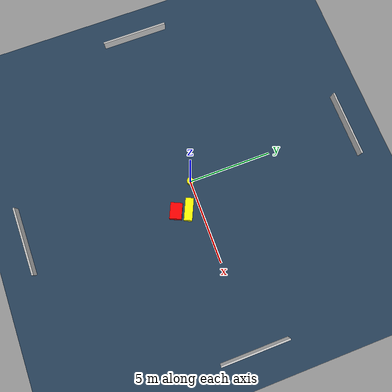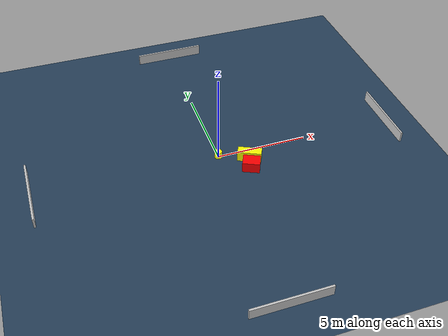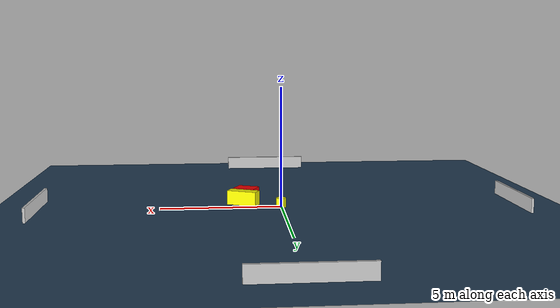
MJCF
<?xml version="1.0" ?>
<mujoco model="generated_environment">
  <option timestep="0.01" integrator="RK4" cone="elliptic"/>
  <default>
    <geom density="1"/>
  </default>
  <asset>
    <texture builtin="gradient" height="3072" name="skybox" rgb1="0.3 0.5 0.7" rgb2="0 0 0" type="skybox" width="512"/>
    <texture builtin="checker" height="300" name="groundplane" rgb1="0.2 0.3 0.4" rgb2="0.1 0.2 0.3" type="2d" width="300"/>
    <material name="groundplane" reflectance="0.2" texrepeat="5 5" texture="groundplane"/>
  </asset>
  <worldbody>
    <light dir="0 0 -1" directional="true" pos="0 0 1.5"/>
    <geom condim="3" friction="0.5 0.005 0.001" material="groundplane" name="floor" pos="0 0 0" size="0 0 0.05" type="plane"/>
    <body name="walls">
      <geom name="wall_1" condim="4" pos="-10.0 0.0 0.3" rgba="0.800000011920929 0.800000011920929 0.800000011920929 1.0" size="0.05 2.0 0.3" type="box"/>
      <geom name="wall_2" condim="4" pos="10.0 0.0 0.3" rgba="0.800000011920929 0.800000011920929 0.800000011920929 1.0" size="0.05 2.0 0.3" type="box"/>
      <geom name="wall_3" condim="4" pos="0.0 -10.0 0.3" rgba="0.800000011920929 0.800000011920929 0.800000011920929 1.0" size="2.0 0.05 0.3" type="box"/>
      <geom name="wall_4" condim="4" pos="0.0 10.0 0.3" rgba="0.800000011920929 0.800000011920929 0.800000011920929 1.0" size="2.0 0.05 0.3" type="box"/>
    </body>
    <body name="robot">
      <joint name="joint_x" type="slide" pos="0 0 0" axis="1 0 0"/>
      <joint name="joint_y" type="slide" pos="0 0 0" axis="0 1 0"/>
      <geom name="robot" type="cylinder" pos="0.0 0.0 0.2" size="0.2 0.2 0.0" mass="5.0" friction="1.0 0.005 0.0001" condim="4" rgba="1.0 1.0 0.0 1.0"/>
    </body>
    <body name="obstacle_1_movable">
      <geom name="obstacle_1_movable" condim="4" pos="1.5504667533449747 -0.663348817279682 0.3" euler="0 0 245.11743517123466" friction="0.0 0.005 0.001" rgba="1.0 1.0 0.0 1.0" size="0.23905840954177338 0.6435820402155055 0.3" type="box" mass="0.1"/>
      <joint type="free"/>
    </body>
    <body name="obstacle_2_static">
      <geom name="obstacle_2_static" condim="4" pos="1.3880318636961229 -1.3814180318608433 0.3" euler="0 0 245.3615917784579" friction="0.0 0.005 0.001" rgba="1.0 0.0 0.0 1.0" size="0.34573444764952654 0.4647018184362966 0.3" type="box"/>
    </body>
  </worldbody>
  <actuator>
    <motor name="actuator_x" joint="joint_x" gear="1" ctrlrange="-1 1"/>
    <motor name="actuator_y" joint="joint_y" gear="1" ctrlrange="-1 1"/>
  </actuator>
</mujoco>
